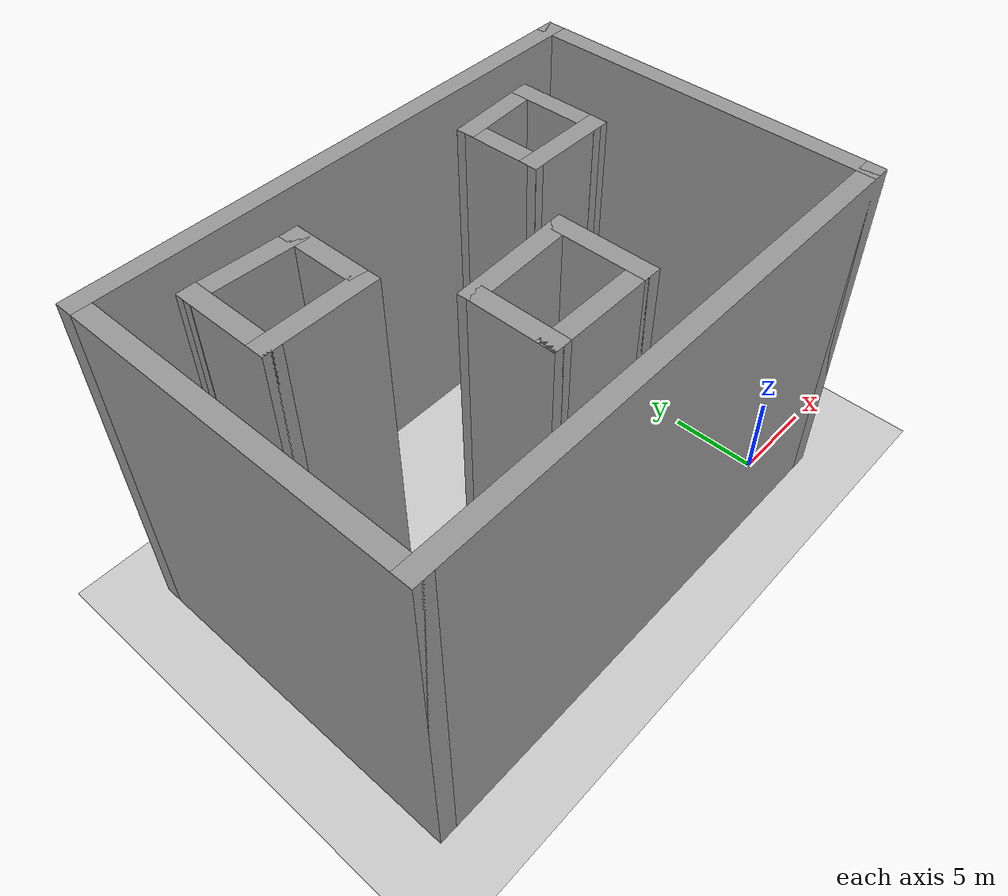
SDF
<sdf version="1.7">
 <world name="default">
  <light name="sun" type="directional">
   <pose>0 0 10 0 -0 0</pose>
   <diffuse>0.8 0.8 0.8 1</diffuse>
   <specular>0.2 0.2 0.2 1</specular>
   <attenuation>
    <range>1000</range>
    <constant>0.9</constant>
    <linear>0.01</linear>
    <quadratic>0.001</quadratic>
   </attenuation>
   <direction>-0.5 0.1 -0.9</direction>
   <spot><inner_angle>0</inner_angle><outer_angle>0</outer_angle><falloff>0</falloff></spot>
  </light>
  <model name="ground_plane">
   <static>1</static>
   <link name="link">
    <collision name="collision">
     <geometry><plane><normal>0 0 1</normal><size>100 100</size></plane></geometry>
     <surface><friction><ode><mu>100</mu><mu2>50</mu2></ode></friction></surface>
    </collision>
    <visual name="visual">
     <cast_shadows>0</cast_shadows>
     <geometry><plane><normal>0 0 1</normal><size>100 100</size></plane></geometry>
     <material>
      <script><uri>file://media/materials/scripts/gazebo.material</uri><name>Gazebo/Grey</name></script>
     </material>
    </visual>
   </link>
  </model>
  <gravity>0 0 -9.8</gravity>
  <magnetic_field>6e-06 2.3e-05 -4.2e-05</magnetic_field>
  <atmosphere type="adiabatic"/>
  <physics type="ode">
   <max_step_size>0.001</max_step_size>
   <real_time_factor>1</real_time_factor>
   <real_time_update_rate>1000</real_time_update_rate>
  </physics>
  <scene><ambient>0.4 0.4 0.4 1</ambient><background>0.7 0.7 0.7 1</background><shadows>1</shadows></scene>
  <audio><device>default</device></audio>
  <spherical_coordinates>
   <surface_model>EARTH_WGS84</surface_model>
   <latitude_deg>0</latitude_deg>
   <longitude_deg>0</longitude_deg>
   <elevation>0</elevation>
   <heading_deg>0</heading_deg>
  </spherical_coordinates>
  <model name="car">
   <link name="base_footprint">
    <inertial>
     <pose>0 0 0.198963 0 -0 0</pose>
     <mass>0.54</mass>
     <inertia>
      <ixx>0.0258787</ixx>
      <ixy>0</ixy>
      <ixz>1.35525e-20</ixz>
      <iyy>0.0261347</iyy>
      <iyz>0</iyz>
      <izz>0.022056</izz>
     </inertia>
    </inertial>
    <collision name="base_footprint_fixed_joint_lump__base_link_collision">
     <pose>0 0 0.092 0 -0 0</pose>
     <geometry><cylinder><length>0.12</length><radius>0.1</radius></cylinder></geometry>
    </collision>
    <collision name="base_footprint_fixed_joint_lump__laser_c_collision_1">
     <pose>0 0 0.306 0 -0 0</pose>
     <geometry><cylinder><length>0.1</length><radius>0.02</radius></cylinder></geometry>
    </collision>
    <collision name="base_footprint_fixed_joint_lump__laser_link_collision_2">
     <pose>0 0 0.466 0 -0 0</pose>
     <geometry><cylinder><length>0.02</length><radius>0.02</radius></cylinder></geometry>
    </collision>
    <collision name="base_footprint_fixed_joint_lump__caster_link_collision_3">
     <pose>0.08 0 0.016 1.57079 -0 0</pose>
     <geometry><sphere><radius>0.016</radius></sphere></geometry>
     <surface>
      <contact><ode><kp>1e+06</kp><kd>10</kd></ode></contact>
      <friction><ode><mu>0</mu><mu2>0</mu2></ode></friction>
     </surface>
    </collision>
    <collision name="base_footprint_fixed_joint_lump__caster_link2_collision_4">
     <pose>-0.08 0 0.016 1.57079 -0 0</pose>
     <geometry><sphere><radius>0.016</radius></sphere></geometry>
     <surface>
      <contact><ode><kp>1e+06</kp><kd>10</kd></ode></contact>
      <friction><ode><mu>0</mu><mu2>0</mu2></ode></friction>
     </surface>
    </collision>
    <collision name="base_footprint_fixed_joint_lump__imu_link_collision_5">
     <pose>0 0 0.112 0 -0 0</pose>
     <geometry><box><size>0.02 0.02 0.02</size></box></geometry>
    </collision>
    <visual name="base_footprint_fixed_joint_lump__base_link_visual">
     <pose>0 0 0.092 0 -0 0</pose>
     <geometry><cylinder><length>0.12</length><radius>0.1</radius></cylinder></geometry>
    </visual>
    <visual name="base_footprint_fixed_joint_lump__laser_c_visual_1">
     <pose>0 0 0.306 0 -0 0</pose>
     <geometry><cylinder><length>0.3</length><radius>0.02</radius></cylinder></geometry>
    </visual>
    <visual name="base_footprint_fixed_joint_lump__laser_link_visual_2">
     <pose>0 0 0.466 0 -0 0</pose>
     <geometry><cylinder><length>0.02</length><radius>0.02</radius></cylinder></geometry>
    </visual>
    <visual name="base_footprint_fixed_joint_lump__caster_link_visual_3">
     <pose>0.08 0 0.016 1.57079 -0 0</pose>
     <geometry><sphere><radius>0.016</radius></sphere></geometry>
    </visual>
    <visual name="base_footprint_fixed_joint_lump__caster_link2_visual_4">
     <pose>-0.08 0 0.016 1.57079 -0 0</pose>
     <geometry><sphere><radius>0.016</radius></sphere></geometry>
    </visual>
    <visual name="base_footprint_fixed_joint_lump__imu_link_visual_5">
     <pose>0 0 0.112 0 -0 0</pose>
     <geometry><box><size>0.02 0.02 0.02</size></box></geometry>
    </visual>
    <sensor name="laser_sensor" type="gpu_ray">
     <plugin name="laserscan" filename="libgazebo_ros_ray_sensor.so">
      <ros><namespace>/</namespace><remapping>~/out:=pointcloud_in</remapping></ros>
      <output_type>sensor_msgs/PointCloud2</output_type>
     </plugin>
     <always_on>1</always_on>
     <visualize>1</visualize>
     <update_rate>8</update_rate>
     <ray>
      <scan>
       <horizontal>
        <samples>120</samples>
        <resolution>1</resolution>
        <min_angle>0</min_angle>
        <max_angle>6.28</max_angle>
       </horizontal>
       <vertical>
        <samples>10</samples>
        <resolution>1</resolution>
        <min_angle>-0</min_angle>
        <max_angle>0.6</max_angle>
       </vertical>
      </scan>
      <range><min>0.3</min><max>10</max><resolution>0.015</resolution></range>
      <noise><type>gaussian</type><mean>0</mean><stddev>0.01</stddev></noise>
     </ray>
     <pose>0 0 0.466 0 -0 0</pose>
    </sensor>
    <sensor name="imu_sensor" type="imu">
     <plugin name="imu_plugin" filename="libgazebo_ros_imu_sensor.so">
      <ros><namespace>/</namespace><remapping>~/out:=imu</remapping></ros>
      <initial_orientation_as_reference>0</initial_orientation_as_reference>
     </plugin>
     <always_on>1</always_on>
     <update_rate>100</update_rate>
     <visualize>1</visualize>
     <imu>
      <angular_velocity>
       <x>
        <noise type="gaussian">
         <mean>0</mean>
         <stddev>0.0002</stddev>
         <bias_mean>7.5e-06</bias_mean>
         <bias_stddev>8e-07</bias_stddev>
        </noise>
       </x>
       <y>
        <noise type="gaussian">
         <mean>0</mean>
         <stddev>0.0002</stddev>
         <bias_mean>7.5e-06</bias_mean>
         <bias_stddev>8e-07</bias_stddev>
        </noise>
       </y>
       <z>
        <noise type="gaussian">
         <mean>0</mean>
         <stddev>0.0002</stddev>
         <bias_mean>7.5e-06</bias_mean>
         <bias_stddev>8e-07</bias_stddev>
        </noise>
       </z>
      </angular_velocity>
      <linear_acceleration>
       <x>
        <noise type="gaussian">
         <mean>0</mean>
         <stddev>0.017</stddev>
         <bias_mean>0.1</bias_mean>
         <bias_stddev>0.001</bias_stddev>
        </noise>
       </x>
       <y>
        <noise type="gaussian">
         <mean>0</mean>
         <stddev>0.017</stddev>
         <bias_mean>0.1</bias_mean>
         <bias_stddev>0.001</bias_stddev>
        </noise>
       </y>
       <z>
        <noise type="gaussian">
         <mean>0</mean>
         <stddev>0.017</stddev>
         <bias_mean>0.1</bias_mean>
         <bias_stddev>0.001</bias_stddev>
        </noise>
       </z>
      </linear_acceleration>
     </imu>
     <pose>0 0 0.112 0 -0 0</pose>
    </sensor>
   </link>
   <joint name="left_wheel_joint" type="revolute">
    <pose relative_to="base_footprint">-0.04 0.1 0.032 0 -0 0</pose>
    <parent>base_footprint</parent>
    <child>left_wheel_link</child>
    <axis>
     <xyz>0 1 0</xyz>
     <limit><lower>-1e+16</lower><upper>1e+16</upper></limit>
     <dynamics><spring_reference>0</spring_reference><spring_stiffness>0</spring_stiffness></dynamics>
    </axis>
   </joint>
   <link name="left_wheel_link">
    <pose relative_to="left_wheel_joint">0 0 0 0 -0 0</pose>
    <inertial>
     <mass>0.2</mass>
     <inertia>
      <ixx>0.000190417</ixx>
      <ixy>0</ixy>
      <ixz>0</ixz>
      <iyy>0.0001904</iyy>
      <iyz>0</iyz>
      <izz>0.00036</izz>
     </inertia>
    </inertial>
    <collision name="left_wheel_link_collision">
     <pose>0 0 0 1.57079 -0 0</pose>
     <geometry><cylinder><length>0.04</length><radius>0.032</radius></cylinder></geometry>
    </collision>
    <visual name="left_wheel_link_visual">
     <pose>0 0 0 1.57079 -0 0</pose>
     <geometry><cylinder><length>0.04</length><radius>0.032</radius></cylinder></geometry>
    </visual>
   </link>
   <joint name="right_wheel_joint" type="revolute">
    <pose relative_to="base_footprint">-0.04 -0.1 0.032 0 -0 0</pose>
    <parent>base_footprint</parent>
    <child>right_wheel_link</child>
    <axis>
     <xyz>0 1 0</xyz>
     <limit><lower>-1e+16</lower><upper>1e+16</upper></limit>
     <dynamics><spring_reference>0</spring_reference><spring_stiffness>0</spring_stiffness></dynamics>
    </axis>
   </joint>
   <link name="right_wheel_link">
    <pose relative_to="right_wheel_joint">0 0 0 0 -0 0</pose>
    <inertial>
     <mass>0.2</mass>
     <inertia>
      <ixx>0.000190417</ixx>
      <ixy>0</ixy>
      <ixz>0</ixz>
      <iyy>0.0001904</iyy>
      <iyz>0</iyz>
      <izz>0.00036</izz>
     </inertia>
    </inertial>
    <collision name="right_wheel_link_collision">
     <pose>0 0 0 1.57079 -0 0</pose>
     <geometry><cylinder><length>0.04</length><radius>0.032</radius></cylinder></geometry>
    </collision>
    <visual name="right_wheel_link_visual">
     <pose>0 0 0 1.57079 -0 0</pose>
     <geometry><cylinder><length>0.04</length><radius>0.032</radius></cylinder></geometry>
    </visual>
   </link>
   <static>0</static>
   <plugin name="diff_drive" filename="libgazebo_ros_diff_drive.so">
    <ros><namespace>/</namespace><remapping>cmd_vel:=cmd_vel</remapping><remapping>odom:=odom</remapping></ros>
    <update_rate>30</update_rate>
    <left_joint>left_wheel_joint</left_joint>
    <right_joint>right_wheel_joint</right_joint>
    <wheel_separation>0.2</wheel_separation>
    <wheel_diameter>0.065</wheel_diameter>
    <max_wheel_torque>20</max_wheel_torque>
    <max_wheel_acceleration>1.0</max_wheel_acceleration>
    <publish_odom>1</publish_odom>
    <publish_odom_tf>1</publish_odom_tf>
    <publish_wheel_tf>0</publish_wheel_tf>
    <odometry_frame>odom</odometry_frame>
    <robot_base_frame>base_footprint</robot_base_frame>
   </plugin>
   <pose>-0.085093 -1e-06 -1e-06 -0 1.5e-05 0.000239</pose>
  </model>
  <model name="Untitled">
   <pose>-12.4276 7.94387 0 0 -0 0</pose>
   <link name="Wall_10">
    <collision name="Wall_10_Collision">
     <geometry><box><size>6.1 1 20</size></box></geometry>
     <pose>0 0 10 0 -0 0</pose>
    </collision>
    <visual name="Wall_10_Visual">
     <pose>0 0 10 0 -0 0</pose>
     <geometry><box><size>6.1 1 20</size></box></geometry>
     <material>
      <script><uri>file://media/materials/scripts/gazebo.material</uri><name>Gazebo/Grey</name></script>
      <ambient>1 1 1 1</ambient>
     </material>
     <meta><layer>0</layer></meta>
    </visual>
    <pose>-8.405 2.053 0 0 -0 0</pose>
   </link>
   <link name="Wall_11">
    <collision name="Wall_11_Collision">
     <geometry><box><size>5.09983 1 20</size></box></geometry>
     <pose>0 0 10 0 -0 0</pose>
    </collision>
    <visual name="Wall_11_Visual">
     <pose>0 0 10 0 -0 0</pose>
     <geometry><box><size>5.09983 1 20</size></box></geometry>
     <material>
      <script><uri>file://media/materials/scripts/gazebo.material</uri><name>Gazebo/Grey</name></script>
      <ambient>1 1 1 1</ambient>
     </material>
     <meta><layer>0</layer></meta>
    </visual>
    <pose>-5.855 4.103 0 0 -0 1.5708</pose>
   </link>
   <link name="Wall_13">
    <collision name="Wall_13_Collision">
     <geometry><box><size>6.10612 1 20</size></box></geometry>
     <pose>0 0 10 0 -0 0</pose>
    </collision>
    <visual name="Wall_13_Visual">
     <pose>0 0 10 0 -0 0</pose>
     <geometry><box><size>6.10612 1 20</size></box></geometry>
     <material>
      <script><uri>file://media/materials/scripts/gazebo.material</uri><name>Gazebo/Grey</name></script>
      <ambient>1 1 1 1</ambient>
     </material>
     <meta><layer>0</layer></meta>
    </visual>
    <pose>-8.405 6.278 0 0 -0 -0.04898</pose>
   </link>
   <link name="Wall_15">
    <collision name="Wall_15_Collision">
     <geometry><box><size>4.85021 1 20</size></box></geometry>
     <pose>0 0 10 0 -0 0</pose>
    </collision>
    <visual name="Wall_15_Visual">
     <pose>0 0 10 0 -0 0</pose>
     <geometry><box><size>4.85021 1 20</size></box></geometry>
     <material>
      <script><uri>file://media/materials/scripts/gazebo.material</uri><name>Gazebo/Grey</name></script>
      <ambient>1 1 1 1</ambient>
     </material>
     <meta><layer>0</layer></meta>
    </visual>
    <pose>4.884 4.195 0 0 -0 -1.56041</pose>
   </link>
   <link name="Wall_16">
    <collision name="Wall_16_Collision">
     <geometry><box><size>5.10046 1 20</size></box></geometry>
     <pose>0 0 10 0 -0 0</pose>
    </collision>
    <visual name="Wall_16_Visual">
     <pose>0 0 10 0 -0 0</pose>
     <geometry><box><size>5.10046 1 20</size></box></geometry>
     <material>
      <script><uri>file://media/materials/scripts/gazebo.material</uri><name>Gazebo/Grey</name></script>
      <ambient>1 1 1 1</ambient>
     </material>
     <meta><layer>0</layer></meta>
    </visual>
    <pose>6.954 2.27 0 0 -0 0</pose>
   </link>
   <link name="Wall_17">
    <collision name="Wall_17_Collision">
     <geometry><box><size>5.1008 1 20</size></box></geometry>
     <pose>0 0 10 0 -0 0</pose>
    </collision>
    <visual name="Wall_17_Visual">
     <pose>0 0 10 0 -0 0</pose>
     <geometry><box><size>5.1008 1 20</size></box></geometry>
     <material>
      <script><uri>file://media/materials/scripts/gazebo.material</uri><name>Gazebo/Grey</name></script>
      <ambient>1 1 1 1</ambient>
     </material>
     <meta><layer>0</layer></meta>
    </visual>
    <pose>8.984 4.32 0 0 -0 1.58055</pose>
   </link>
   <link name="Wall_18">
    <collision name="Wall_18_Collision">
     <geometry><box><size>5.10762 1 20</size></box></geometry>
     <pose>0 0 10 0 -0 0</pose>
    </collision>
    <visual name="Wall_18_Visual">
     <pose>0 0 10 0 -0 0</pose>
     <geometry><box><size>5.10762 1 20</size></box></geometry>
     <material>
      <script><uri>file://media/materials/scripts/gazebo.material</uri><name>Gazebo/Grey</name></script>
      <ambient>1 1 1 1</ambient>
     </material>
     <meta><layer>0</layer></meta>
    </visual>
    <pose>6.914 6.245 0 0 -0 -3.08069</pose>
   </link>
   <link name="Wall_20">
    <collision name="Wall_20_Collision">
     <geometry><box><size>5.1 1 20</size></box></geometry>
     <pose>0 0 10 0 -0 0</pose>
    </collision>
    <visual name="Wall_20_Visual">
     <pose>0 0 10 0 -0 0</pose>
     <geometry><box><size>5.1 1 20</size></box></geometry>
     <material>
      <script><uri>file://media/materials/scripts/gazebo.material</uri><name>Gazebo/Grey</name></script>
      <ambient>1 1 1 1</ambient>
     </material>
     <meta><layer>0</layer></meta>
    </visual>
    <pose>-3.47 -3.9 0 0 -0 -1.5708</pose>
   </link>
   <link name="Wall_21">
    <collision name="Wall_21_Collision">
     <geometry><box><size>6.6 1 20</size></box></geometry>
     <pose>0 0 10 0 -0 0</pose>
    </collision>
    <visual name="Wall_21_Visual">
     <pose>0 0 10 0 -0 0</pose>
     <geometry><box><size>6.6 1 20</size></box></geometry>
     <material>
      <script><uri>file://media/materials/scripts/gazebo.material</uri><name>Gazebo/Grey</name></script>
      <ambient>1 1 1 1</ambient>
     </material>
     <meta><layer>0</layer></meta>
    </visual>
    <pose>-0.669999 -5.95 0 0 -0 0</pose>
   </link>
   <link name="Wall_22">
    <collision name="Wall_22_Collision">
     <geometry><box><size>5.35 1 20</size></box></geometry>
     <pose>0 0 10 0 -0 0</pose>
    </collision>
    <visual name="Wall_22_Visual">
     <pose>0 0 10 0 -0 0</pose>
     <geometry><box><size>5.35 1 20</size></box></geometry>
     <material>
      <script><uri>file://media/materials/scripts/gazebo.material</uri><name>Gazebo/Grey</name></script>
      <ambient>1 1 1 1</ambient>
     </material>
     <meta><layer>0</layer></meta>
    </visual>
    <pose>2.13 -3.775 0 0 -0 1.5708</pose>
   </link>
   <link name="Wall_23">
    <collision name="Wall_23_Collision">
     <geometry><box><size>6.60586 1 20</size></box></geometry>
     <pose>0 0 10 0 -0 0</pose>
    </collision>
    <visual name="Wall_23_Visual">
     <pose>0 0 10 0 -0 0</pose>
     <geometry><box><size>6.60586 1 20</size></box></geometry>
     <material>
      <script><uri>file://media/materials/scripts/gazebo.material</uri><name>Gazebo/Grey</name></script>
      <ambient>1 1 1 1</ambient>
     </material>
     <meta><layer>0</layer></meta>
    </visual>
    <pose>-0.669999 -1.725 0 0 -0 -3.09698</pose>
   </link>
   <link name="Wall_3">
    <collision name="Wall_3_Collision">
     <geometry><box><size>22.5 0.15 2.5</size></box></geometry>
     <pose>0 0 1.25 0 -0 0</pose>
    </collision>
    <visual name="Wall_3_Visual">
     <pose>0 0 1.25 0 -0 0</pose>
     <geometry><box><size>22.5 0.15 2.5</size></box></geometry>
     <material>
      <script><uri>file://media/materials/scripts/gazebo.material</uri><name>Gazebo/Grey</name></script>
      <ambient>1 1 1 1</ambient>
     </material>
     <meta><layer>0</layer></meta>
    </visual>
    <pose>3.25 -9.425 0 0 -0 0</pose>
   </link>
   <link name="Wall_4">
    <collision name="Wall_4_Collision">
     <geometry><box><size>19.85 1 20</size></box></geometry>
     <pose>0 0 10 0 -0 0</pose>
    </collision>
    <visual name="Wall_4_Visual">
     <pose>0 0 10 0 -0 0</pose>
     <geometry><box><size>19.85 1 20</size></box></geometry>
     <material>
      <script><uri>file://media/materials/scripts/gazebo.material</uri><name>Gazebo/Grey</name></script>
      <ambient>1 1 1 1</ambient>
     </material>
     <meta><layer>0</layer></meta>
    </visual>
    <pose>14.425 0 0 0 -0 1.5708</pose>
   </link>
   <link name="Wall_5">
    <collision name="Wall_5_Collision">
     <geometry><box><size>29.85 1 20</size></box></geometry>
     <pose>0 0 10 0 -0 0</pose>
    </collision>
    <visual name="Wall_5_Visual">
     <pose>0 0 10 0 -0 0</pose>
     <geometry><box><size>29.85 1 20</size></box></geometry>
     <material>
      <script><uri>file://media/materials/scripts/gazebo.material</uri><name>Gazebo/Grey</name></script>
      <ambient>1 1 1 1</ambient>
     </material>
     <meta><layer>0</layer></meta>
    </visual>
    <pose>1e-06 9.425 0 0 -0 3.14159</pose>
   </link>
   <link name="Wall_6">
    <collision name="Wall_6_Collision">
     <geometry><box><size>19.85 1 20</size></box></geometry>
     <pose>0 0 10 0 -0 0</pose>
    </collision>
    <visual name="Wall_6_Visual">
     <pose>0 0 10 0 -0 0</pose>
     <geometry><box><size>19.85 1 20</size></box></geometry>
     <material>
      <script><uri>file://media/materials/scripts/gazebo.material</uri><name>Gazebo/Grey</name></script>
      <ambient>1 1 1 1</ambient>
     </material>
     <meta><layer>0</layer></meta>
    </visual>
    <pose>-14.425 0 0 0 -0 -1.5708</pose>
   </link>
   <link name="Wall_7">
    <collision name="Wall_7_Collision">
     <geometry><box><size>29.85 1 20</size></box></geometry>
     <pose>0 0 10 0 -0 0</pose>
    </collision>
    <visual name="Wall_7_Visual">
     <pose>0 0 10 0 -0 0</pose>
     <geometry><box><size>29.85 1 20</size></box></geometry>
     <material>
      <script><uri>file://media/materials/scripts/gazebo.material</uri><name>Gazebo/Grey</name></script>
      <ambient>1 1 1 1</ambient>
     </material>
     <meta><layer>0</layer></meta>
    </visual>
    <pose>1e-06 -9.425 0 0 -0 0</pose>
   </link>
   <link name="Wall_9">
    <collision name="Wall_9_Collision">
     <geometry><box><size>5.35 1 20</size></box></geometry>
     <pose>0 0 10 0 -0 0</pose>
    </collision>
    <visual name="Wall_9_Visual">
     <pose>0 0 10 0 -0 0</pose>
     <geometry><box><size>5.35 1 20</size></box></geometry>
     <material>
      <script><uri>file://media/materials/scripts/gazebo.material</uri><name>Gazebo/Grey</name></script>
      <ambient>1 1 1 1</ambient>
     </material>
     <meta><layer>0</layer></meta>
    </visual>
    <pose>-10.955 4.228 0 0 -0 -1.5708</pose>
   </link>
   <static>1</static>
  </model>
 </world>
</sdf>
